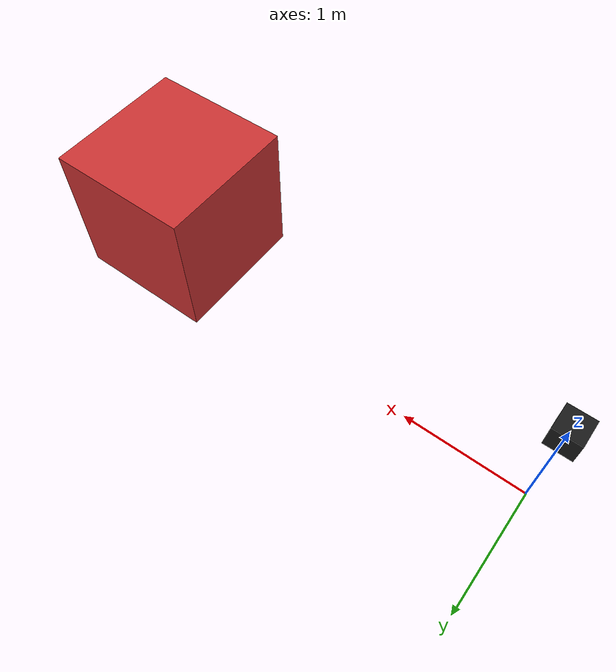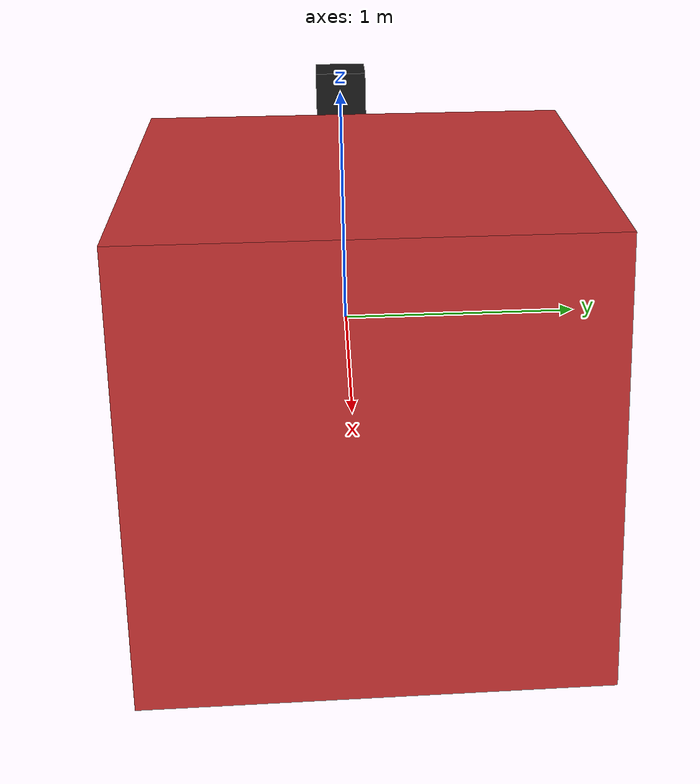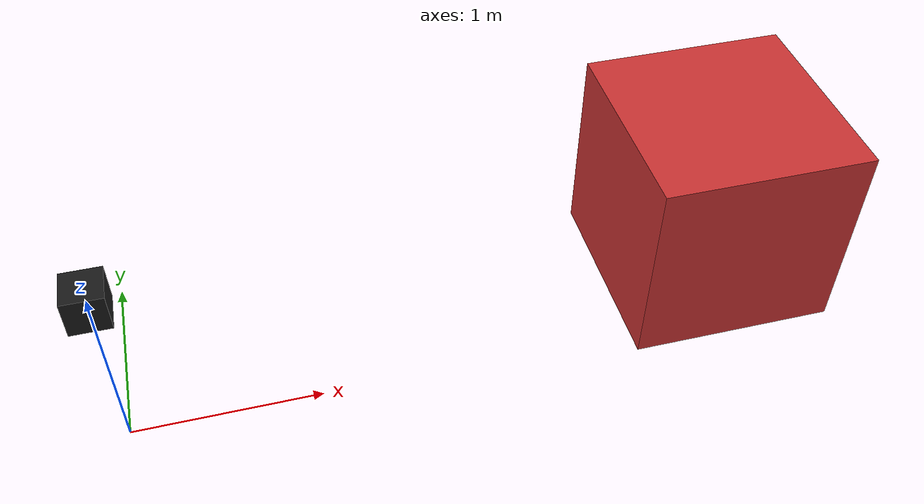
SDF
<?xml version="1.0" ?>
<sdf version="1.9">
  <world name="default">
    <plugin
      filename="gz-sim-physics-system"
      name="gz::sim::systems::Physics" />
    <plugin
      filename="gz-sim-user-commands-system"
      name="gz::sim::systems::UserCommands" />
    <plugin
      filename="gz-sim-scene-broadcaster-system"
      name="gz::sim::systems::SceneBroadcaster" />

    <plugin name="rmagine_embree_map_system" filename="librmagine_embree_map_system.so">
      <ignore_model>sensor_model</ignore_model>
      <update>
        <rate_limit>30</rate_limit>
        <delta_trans>0.001</delta_trans>
        <delta_rot>0.001</delta_rot>
        <delta_scale>0.001</delta_scale>
      </update>
    </plugin>

    <plugin name="rmagine_embree_sensor_system" filename="librmagine_embree_sensor_system.so"/>

    <plugin name="test_spawn_delete_system" filename="libtest_spawn_delete_system.so">
      <pose>1 0 1 0 0 0</pose>
      <size>0.5 0.5 0.5</size>
    </plugin>

    <light name="sun" type="directional">
      <cast_shadows>true</cast_shadows>
      <pose>0 0 10 0 0 0</pose>
      <diffuse>0.8 0.8 0.8 1</diffuse>
      <specular>0.2 0.2 0.2 1</specular>
      <direction>-0.5 0.1 -0.9</direction>
    </light>

    <model name="target_box">
      <static>true</static>
      <pose>3 0 1 0 0 0</pose>
      <link name="link">
        <visual name="visual">
          <geometry>
            <box>
              <size>1 1 1</size>
            </box>
          </geometry>
          <material>
            <ambient>0.8 0.2 0.2 1</ambient>
            <diffuse>0.8 0.2 0.2 1</diffuse>
          </material>
        </visual>
      </link>
    </model>

    <model name="sensor_model">
      <static>true</static>
      <pose>0 0 1 0 0 0</pose>
      <link name="sensor_link">
        <sensor name="sensor_model_sensor" type="custom" gz:type="rmagine_embree">
          <map_key>default</map_key>
          <frame>sensor_link</frame>
          <topic_scan>scan</topic_scan>
          <topic_points>points</topic_points>
          <update_rate>5</update_rate>
          <lidar>
            <scan>
              <horizontal>
                <min_angle>-1.0472</min_angle>
                <increment>0.0052486216</increment>
                <samples>400</samples>
              </horizontal>
            </scan>
            <range>
              <min>0.2</min>
              <max>50.0</max>
            </range>
          </lidar>
        </sensor>
        <visual name="sensor_visual">
          <geometry>
            <box>
              <size>0.2 0.2 0.2</size>
            </box>
          </geometry>
          <material>
            <ambient>0.1 0.1 0.1 1</ambient>
            <diffuse>0.1 0.1 0.1 1</diffuse>
          </material>
        </visual>
      </link>
    </model>
  </world>
</sdf>
